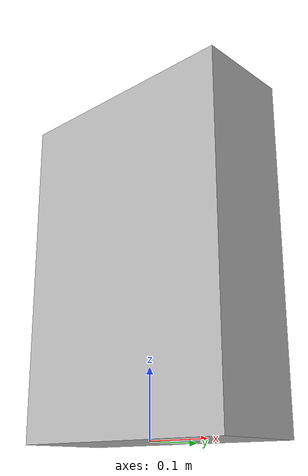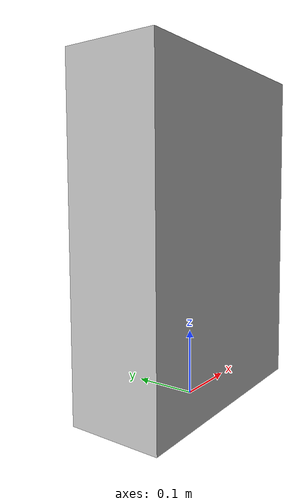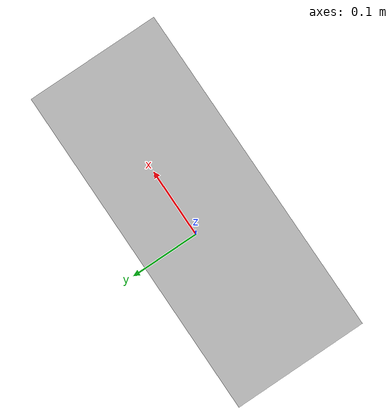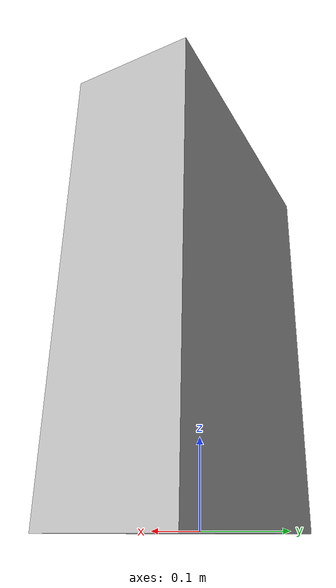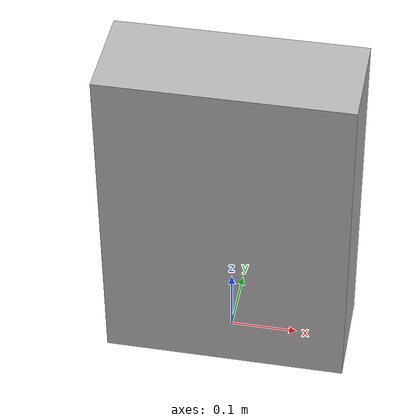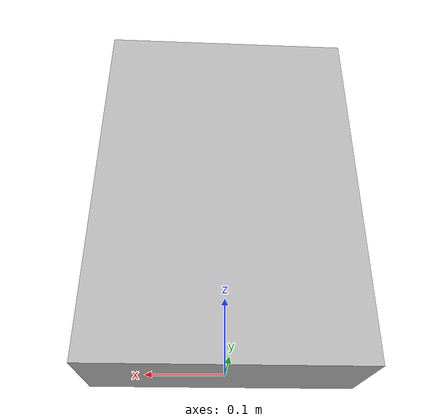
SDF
<sdf version="1.4">
  <model name="cereal_rocket_power">
    <static>0</static>
    <link name="link">

      <collision name="colision1">
        <pose>0 0 0.25 0 0 3.1416</pose>
        <geometry>
          <mesh>
            <uri>model://cereal_rocket_power/meshes/cereal_rocket_power.dae</uri>
	    <scale> 1.8 1.8 1.8 </scale>
          </mesh>
        </geometry>
        <surface>
          <bounce />
          <friction>
            <ode />
          </friction>
          <contact>
            <ode />
          </contact>
        </surface>
      </collision>

      <visual name="visual1">
        <pose>0 0 0.25 0 0 3.1416</pose>
        <geometry>
          <mesh>
            <uri>model://cereal_rocket_power/meshes/cereal_rocket_power.dae</uri>
	    <scale> 1.8 1.8 1.8 </scale>
          </mesh>
        </geometry>
      </visual>

      <velocity_decay>
        <linear>0.000000</linear>
        <angular>0.000000</angular>
      </velocity_decay>
      <self_collide>0</self_collide>
      <kinematic>0</kinematic>
      <gravity>1</gravity>
    </link>
  </model>
</sdf>
